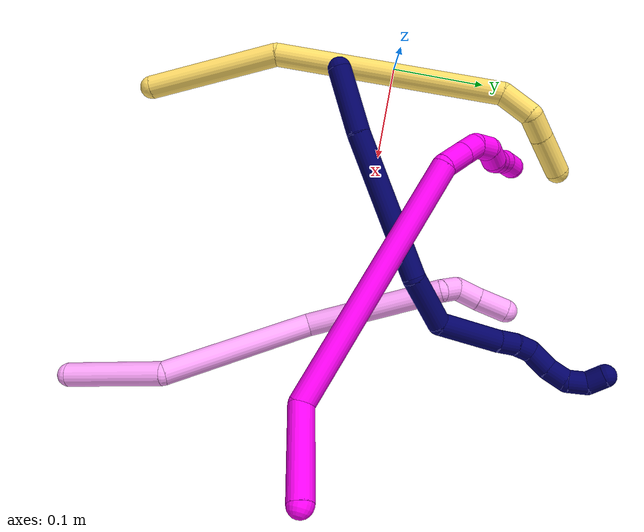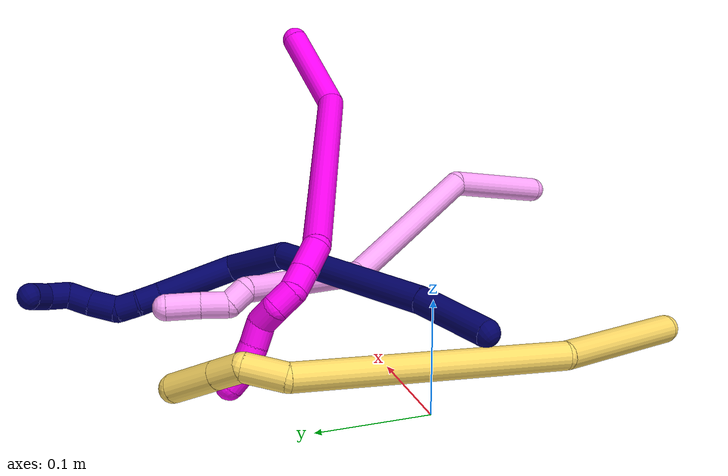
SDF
<sdf version="1.7">
 <world name="default">
  <model name="4">
   <static>0</static>
   <link name="4">
    <collision name="collision-cylinder-e_1_1_4">
     <pose>-0.001423 0.008335 -0.052731 -2.98482 -0.026646 0.336054</pose>
     <geometry><cylinder><radius>0.0125</radius><length>0.106808</length></cylinder></geometry>
     <surface>
      <friction><ode><mu>1.16</mu><mu2>1.16</mu2><slip1>0</slip1><slip2>0</slip2></ode></friction>
      <contact><ode><kp>1e+06</kp><kd>1</kd><max_vel>0</max_vel><min_depth>0.001</min_depth></ode></contact>
     </surface>
    </collision>
    <visual name="visual-cylinder-e_1_1_4">
     <pose>-0.001423 0.008335 -0.052731 -2.98482 -0.026646 0.336054</pose>
     <geometry><cylinder><radius>0.0125</radius><length>0.106808</length></cylinder></geometry>
     <material><ambient>1 0.65098 0.996078 1</ambient></material>
    </visual>
    <collision name="collision-cylinder-e_2_4_5">
     <pose>-0.051087 0.044701 -0.165305 -2.70354 -0.630576 1.94387</pose>
     <geometry><cylinder><radius>0.0125</radius><length>0.163636</length></cylinder></geometry>
     <surface>
      <friction><ode><mu>1.16</mu><mu2>1.16</mu2><slip1>0</slip1><slip2>0</slip2></ode></friction>
      <contact><ode><kp>1e+06</kp><kd>1</kd><max_vel>0</max_vel><min_depth>0.001</min_depth></ode></contact>
     </surface>
    </collision>
    <visual name="visual-cylinder-e_2_4_5">
     <pose>-0.051087 0.044701 -0.165305 -2.70354 -0.630576 1.94387</pose>
     <geometry><cylinder><radius>0.0125</radius><length>0.163636</length></cylinder></geometry>
     <material><ambient>1 0.65098 0.996078 1</ambient></material>
    </visual>
    <collision name="collision-cylinder-e_3_5_6">
     <pose>-0.106267 0.099853 -0.294885 -2.77069 -0.092484 0.483662</pose>
     <geometry><cylinder><radius>0.0125</radius><length>0.150291</length></cylinder></geometry>
     <surface>
      <friction><ode><mu>1.16</mu><mu2>1.16</mu2><slip1>0</slip1><slip2>0</slip2></ode></friction>
      <contact><ode><kp>1e+06</kp><kd>1</kd><max_vel>0</max_vel><min_depth>0.001</min_depth></ode></contact>
     </surface>
    </collision>
    <visual name="visual-cylinder-e_3_5_6">
     <pose>-0.106267 0.099853 -0.294885 -2.77069 -0.092484 0.483662</pose>
     <geometry><cylinder><radius>0.0125</radius><length>0.150291</length></cylinder></geometry>
     <material><ambient>1 0.65098 0.996078 1</ambient></material>
    </visual>
    <collision name="collision-cylinder-e_4_6_7">
     <pose>-0.120642 0.128691 -0.371654 -2.90221 -0.798731 2.58638</pose>
     <geometry><cylinder><radius>0.0125</radius><length>0.020754</length></cylinder></geometry>
     <surface>
      <friction><ode><mu>1.16</mu><mu2>1.16</mu2><slip1>0</slip1><slip2>0</slip2></ode></friction>
      <contact><ode><kp>1e+06</kp><kd>1</kd><max_vel>0</max_vel><min_depth>0.001</min_depth></ode></contact>
     </surface>
    </collision>
    <visual name="visual-cylinder-e_4_6_7">
     <pose>-0.120642 0.128691 -0.371654 -2.90221 -0.798731 2.58638</pose>
     <geometry><cylinder><radius>0.0125</radius><length>0.020754</length></cylinder></geometry>
     <material><ambient>1 0.65098 0.996078 1</ambient></material>
    </visual>
    <collision name="collision-cylinder-e_5_7_8">
     <pose>-0.131044 0.125826 -0.390494 2.77147 -0.230172 -1.10636</pose>
     <geometry><cylinder><radius>0.0125</radius><length>0.026015</length></cylinder></geometry>
     <surface>
      <friction><ode><mu>1.16</mu><mu2>1.16</mu2><slip1>0</slip1><slip2>0</slip2></ode></friction>
      <contact><ode><kp>1e+06</kp><kd>1</kd><max_vel>0</max_vel><min_depth>0.001</min_depth></ode></contact>
     </surface>
    </collision>
    <visual name="visual-cylinder-e_5_7_8">
     <pose>-0.131044 0.125826 -0.390494 2.77147 -0.230172 -1.10636</pose>
     <geometry><cylinder><radius>0.0125</radius><length>0.026015</length></cylinder></geometry>
     <material><ambient>1 0.65098 0.996078 1</ambient></material>
    </visual>
    <collision name="collision-cylinder-e_6_8_2">
     <pose>-0.138209 0.116524 -0.41727 2.83609 -0.261322 -1.41313</pose>
     <geometry><cylinder><radius>0.0125</radius><length>0.032495</length></cylinder></geometry>
     <surface>
      <friction><ode><mu>1.16</mu><mu2>1.16</mu2><slip1>0</slip1><slip2>0</slip2></ode></friction>
      <contact><ode><kp>1e+06</kp><kd>1</kd><max_vel>0</max_vel><min_depth>0.001</min_depth></ode></contact>
     </surface>
    </collision>
    <visual name="visual-cylinder-e_6_8_2">
     <pose>-0.138209 0.116524 -0.41727 2.83609 -0.261322 -1.41313</pose>
     <geometry><cylinder><radius>0.0125</radius><length>0.032495</length></cylinder></geometry>
     <material><ambient>1 0.65098 0.996078 1</ambient></material>
    </visual>
    <collision name="collision-sphere-2">
     <pose>-0.142407 0.111803 -0.432239 0 -0 0</pose>
     <geometry><sphere><radius>0.0125</radius></sphere></geometry>
     <surface>
      <friction><ode><mu>1.16</mu><mu2>1.16</mu2><slip1>0</slip1><slip2>0</slip2></ode></friction>
      <contact><ode><kp>1e+06</kp><kd>1</kd><max_vel>0</max_vel><min_depth>0.001</min_depth></ode></contact>
     </surface>
    </collision>
    <visual name="visual-sphere-2">
     <pose>-0.142407 0.111803 -0.432239 0 -0 0</pose>
     <geometry><sphere><radius>0.0125</radius></sphere></geometry>
     <material><ambient>1 0.65098 0.996078 1</ambient></material>
    </visual>
    <collision name="collision-sphere-4">
     <pose>-0.002846 0.01667 -0.105461 0 -0 0</pose>
     <geometry><sphere><radius>0.0125</radius></sphere></geometry>
     <surface>
      <friction><ode><mu>1.16</mu><mu2>1.16</mu2><slip1>0</slip1><slip2>0</slip2></ode></friction>
      <contact><ode><kp>1e+06</kp><kd>1</kd><max_vel>0</max_vel><min_depth>0.001</min_depth></ode></contact>
     </surface>
    </collision>
    <visual name="visual-sphere-4">
     <pose>-0.002846 0.01667 -0.105461 0 -0 0</pose>
     <geometry><sphere><radius>0.0125</radius></sphere></geometry>
     <material><ambient>1 0.65098 0.996078 1</ambient></material>
    </visual>
    <collision name="collision-sphere-1">
     <geometry><sphere><radius>0.0125</radius></sphere></geometry>
     <surface>
      <friction><ode><mu>1.16</mu><mu2>1.16</mu2><slip1>0</slip1><slip2>0</slip2></ode></friction>
      <contact><ode><kp>1e+06</kp><kd>1</kd><max_vel>0</max_vel><min_depth>0.001</min_depth></ode></contact>
     </surface>
    </collision>
    <visual name="visual-sphere-1">
     <geometry><sphere><radius>0.0125</radius></sphere></geometry>
     <material><ambient>1 0.65098 0.996078 1</ambient></material>
    </visual>
    <collision name="collision-sphere-8">
     <pose>-0.134012 0.121245 -0.402301 0 -0 0</pose>
     <geometry><sphere><radius>0.0125</radius></sphere></geometry>
     <surface>
      <friction><ode><mu>1.16</mu><mu2>1.16</mu2><slip1>0</slip1><slip2>0</slip2></ode></friction>
      <contact><ode><kp>1e+06</kp><kd>1</kd><max_vel>0</max_vel><min_depth>0.001</min_depth></ode></contact>
     </surface>
    </collision>
    <visual name="visual-sphere-8">
     <pose>-0.134012 0.121245 -0.402301 0 -0 0</pose>
     <geometry><sphere><radius>0.0125</radius></sphere></geometry>
     <material><ambient>1 0.65098 0.996078 1</ambient></material>
    </visual>
    <collision name="collision-sphere-5">
     <pose>-0.099327 0.072733 -0.225149 0 -0 0</pose>
     <geometry><sphere><radius>0.0125</radius></sphere></geometry>
     <surface>
      <friction><ode><mu>1.16</mu><mu2>1.16</mu2><slip1>0</slip1><slip2>0</slip2></ode></friction>
      <contact><ode><kp>1e+06</kp><kd>1</kd><max_vel>0</max_vel><min_depth>0.001</min_depth></ode></contact>
     </surface>
    </collision>
    <visual name="visual-sphere-5">
     <pose>-0.099327 0.072733 -0.225149 0 -0 0</pose>
     <geometry><sphere><radius>0.0125</radius></sphere></geometry>
     <material><ambient>1 0.65098 0.996078 1</ambient></material>
    </visual>
    <collision name="collision-sphere-6">
     <pose>-0.113207 0.126974 -0.364622 0 -0 0</pose>
     <geometry><sphere><radius>0.0125</radius></sphere></geometry>
     <surface>
      <friction><ode><mu>1.16</mu><mu2>1.16</mu2><slip1>0</slip1><slip2>0</slip2></ode></friction>
      <contact><ode><kp>1e+06</kp><kd>1</kd><max_vel>0</max_vel><min_depth>0.001</min_depth></ode></contact>
     </surface>
    </collision>
    <visual name="visual-sphere-6">
     <pose>-0.113207 0.126974 -0.364622 0 -0 0</pose>
     <geometry><sphere><radius>0.0125</radius></sphere></geometry>
     <material><ambient>1 0.65098 0.996078 1</ambient></material>
    </visual>
    <collision name="collision-sphere-7">
     <pose>-0.128076 0.130407 -0.378687 0 -0 0</pose>
     <geometry><sphere><radius>0.0125</radius></sphere></geometry>
     <surface>
      <friction><ode><mu>1.16</mu><mu2>1.16</mu2><slip1>0</slip1><slip2>0</slip2></ode></friction>
      <contact><ode><kp>1e+06</kp><kd>1</kd><max_vel>0</max_vel><min_depth>0.001</min_depth></ode></contact>
     </surface>
    </collision>
    <visual name="visual-sphere-7">
     <pose>-0.128076 0.130407 -0.378687 0 -0 0</pose>
     <geometry><sphere><radius>0.0125</radius></sphere></geometry>
     <material><ambient>1 0.65098 0.996078 1</ambient></material>
    </visual>
    <inertial>
     <pose>-0.069773 0.065886 -0.216864 0 -0 0</pose>
     <mass>0.5</mass>
     <inertia>
      <ixx>0.000677</ixx>
      <ixy>0</ixy>
      <ixz>0</ixz>
      <iyy>0.000328</iyy>
      <iyz>0</iyz>
      <izz>-2.9e-05</izz>
     </inertia>
    </inertial>
   </link>
   <pose>0.387897 -0.2795 0.047532 3.03464 -1.30917 -1.39101</pose>
  </model>
  <model name="5">
   <static>0</static>
   <link name="5">
    <collision name="collision-cylinder-e_1_1_4">
     <pose>-0.036842 0.055721 -0.025047 -1.99324 -0.54267 0.812296</pose>
     <geometry><cylinder><radius>0.0125</radius><length>0.142681</length></cylinder></geometry>
     <surface>
      <friction><ode><mu>1.16</mu><mu2>1.16</mu2><slip1>0</slip1><slip2>0</slip2></ode></friction>
      <contact><ode><kp>1e+06</kp><kd>1</kd><max_vel>0</max_vel><min_depth>0.001</min_depth></ode></contact>
     </surface>
    </collision>
    <visual name="visual-cylinder-e_1_1_4">
     <pose>-0.036842 0.055721 -0.025047 -1.99324 -0.54267 0.812296</pose>
     <geometry><cylinder><radius>0.0125</radius><length>0.142681</length></cylinder></geometry>
     <material><ambient>1 0.858824 0.4 1</ambient></material>
    </visual>
    <collision name="collision-cylinder-e_2_4_5">
     <pose>-0.089916 0.225487 -0.092026 -1.92313 -0.132799 0.190024</pose>
     <geometry><cylinder><radius>0.0125</radius><length>0.24518</length></cylinder></geometry>
     <surface>
      <friction><ode><mu>1.16</mu><mu2>1.16</mu2><slip1>0</slip1><slip2>0</slip2></ode></friction>
      <contact><ode><kp>1e+06</kp><kd>1</kd><max_vel>0</max_vel><min_depth>0.001</min_depth></ode></contact>
     </surface>
    </collision>
    <visual name="visual-cylinder-e_2_4_5">
     <pose>-0.089916 0.225487 -0.092026 -1.92313 -0.132799 0.190024</pose>
     <geometry><cylinder><radius>0.0125</radius><length>0.24518</length></cylinder></geometry>
     <material><ambient>1 0.858824 0.4 1</ambient></material>
    </visual>
    <collision name="collision-cylinder-e_3_5_6">
     <pose>-0.100296 0.357277 -0.135761 -1.67203 0.317019 -0.3502</pose>
     <geometry><cylinder><radius>0.0125</radius><length>0.037541</length></cylinder></geometry>
     <surface>
      <friction><ode><mu>1.16</mu><mu2>1.16</mu2><slip1>0</slip1><slip2>0</slip2></ode></friction>
      <contact><ode><kp>1e+06</kp><kd>1</kd><max_vel>0</max_vel><min_depth>0.001</min_depth></ode></contact>
     </surface>
    </collision>
    <visual name="visual-cylinder-e_3_5_6">
     <pose>-0.100296 0.357277 -0.135761 -1.67203 0.317019 -0.3502</pose>
     <geometry><cylinder><radius>0.0125</radius><length>0.037541</length></cylinder></geometry>
     <material><ambient>1 0.858824 0.4 1</ambient></material>
    </visual>
    <collision name="collision-cylinder-e_4_6_7">
     <pose>-0.084944 0.38258 -0.144538 -2.31606 0.74578 -1.45818</pose>
     <geometry><cylinder><radius>0.0125</radius><length>0.028004</length></cylinder></geometry>
     <surface>
      <friction><ode><mu>1.16</mu><mu2>1.16</mu2><slip1>0</slip1><slip2>0</slip2></ode></friction>
      <contact><ode><kp>1e+06</kp><kd>1</kd><max_vel>0</max_vel><min_depth>0.001</min_depth></ode></contact>
     </surface>
    </collision>
    <visual name="visual-cylinder-e_4_6_7">
     <pose>-0.084944 0.38258 -0.144538 -2.31606 0.74578 -1.45818</pose>
     <geometry><cylinder><radius>0.0125</radius><length>0.028004</length></cylinder></geometry>
     <material><ambient>1 0.858824 0.4 1</ambient></material>
    </visual>
    <collision name="collision-cylinder-e_5_7_2">
     <pose>-0.059698 0.402694 -0.163227 -2.32156 0.742114 -1.46026</pose>
     <geometry><cylinder><radius>0.0125</radius><length>0.046594</length></cylinder></geometry>
     <surface>
      <friction><ode><mu>1.16</mu><mu2>1.16</mu2><slip1>0</slip1><slip2>0</slip2></ode></friction>
      <contact><ode><kp>1e+06</kp><kd>1</kd><max_vel>0</max_vel><min_depth>0.001</min_depth></ode></contact>
     </surface>
    </collision>
    <visual name="visual-cylinder-e_5_7_2">
     <pose>-0.059698 0.402694 -0.163227 -2.32156 0.742114 -1.46026</pose>
     <geometry><cylinder><radius>0.0125</radius><length>0.046594</length></cylinder></geometry>
     <material><ambient>1 0.858824 0.4 1</ambient></material>
    </visual>
    <collision name="collision-sphere-2">
     <pose>-0.043952 0.415248 -0.174941 0 -0 0</pose>
     <geometry><sphere><radius>0.0125</radius></sphere></geometry>
     <surface>
      <friction><ode><mu>1.16</mu><mu2>1.16</mu2><slip1>0</slip1><slip2>0</slip2></ode></friction>
      <contact><ode><kp>1e+06</kp><kd>1</kd><max_vel>0</max_vel><min_depth>0.001</min_depth></ode></contact>
     </surface>
    </collision>
    <visual name="visual-sphere-2">
     <pose>-0.043952 0.415248 -0.174941 0 -0 0</pose>
     <geometry><sphere><radius>0.0125</radius></sphere></geometry>
     <material><ambient>1 0.858824 0.4 1</ambient></material>
    </visual>
    <collision name="collision-sphere-7">
     <pose>-0.075443 0.390139 -0.151514 0 -0 0</pose>
     <geometry><sphere><radius>0.0125</radius></sphere></geometry>
     <surface>
      <friction><ode><mu>1.16</mu><mu2>1.16</mu2><slip1>0</slip1><slip2>0</slip2></ode></friction>
      <contact><ode><kp>1e+06</kp><kd>1</kd><max_vel>0</max_vel><min_depth>0.001</min_depth></ode></contact>
     </surface>
    </collision>
    <visual name="visual-sphere-7">
     <pose>-0.075443 0.390139 -0.151514 0 -0 0</pose>
     <geometry><sphere><radius>0.0125</radius></sphere></geometry>
     <material><ambient>1 0.858824 0.4 1</ambient></material>
    </visual>
    <collision name="collision-sphere-6">
     <pose>-0.094445 0.375021 -0.137563 0 -0 0</pose>
     <geometry><sphere><radius>0.0125</radius></sphere></geometry>
     <surface>
      <friction><ode><mu>1.16</mu><mu2>1.16</mu2><slip1>0</slip1><slip2>0</slip2></ode></friction>
      <contact><ode><kp>1e+06</kp><kd>1</kd><max_vel>0</max_vel><min_depth>0.001</min_depth></ode></contact>
     </surface>
    </collision>
    <visual name="visual-sphere-6">
     <pose>-0.094445 0.375021 -0.137563 0 -0 0</pose>
     <geometry><sphere><radius>0.0125</radius></sphere></geometry>
     <material><ambient>1 0.858824 0.4 1</ambient></material>
    </visual>
    <collision name="collision-sphere-5">
     <pose>-0.106148 0.339533 -0.133958 0 -0 0</pose>
     <geometry><sphere><radius>0.0125</radius></sphere></geometry>
     <surface>
      <friction><ode><mu>1.16</mu><mu2>1.16</mu2><slip1>0</slip1><slip2>0</slip2></ode></friction>
      <contact><ode><kp>1e+06</kp><kd>1</kd><max_vel>0</max_vel><min_depth>0.001</min_depth></ode></contact>
     </surface>
    </collision>
    <visual name="visual-sphere-5">
     <pose>-0.106148 0.339533 -0.133958 0 -0 0</pose>
     <geometry><sphere><radius>0.0125</radius></sphere></geometry>
     <material><ambient>1 0.858824 0.4 1</ambient></material>
    </visual>
    <collision name="collision-sphere-1">
     <geometry><sphere><radius>0.0125</radius></sphere></geometry>
     <surface>
      <friction><ode><mu>1.16</mu><mu2>1.16</mu2><slip1>0</slip1><slip2>0</slip2></ode></friction>
      <contact><ode><kp>1e+06</kp><kd>1</kd><max_vel>0</max_vel><min_depth>0.001</min_depth></ode></contact>
     </surface>
    </collision>
    <visual name="visual-sphere-1">
     <geometry><sphere><radius>0.0125</radius></sphere></geometry>
     <material><ambient>1 0.858824 0.4 1</ambient></material>
    </visual>
    <collision name="collision-sphere-4">
     <pose>-0.073684 0.111441 -0.050093 0 -0 0</pose>
     <geometry><sphere><radius>0.0125</radius></sphere></geometry>
     <surface>
      <friction><ode><mu>1.16</mu><mu2>1.16</mu2><slip1>0</slip1><slip2>0</slip2></ode></friction>
      <contact><ode><kp>1e+06</kp><kd>1</kd><max_vel>0</max_vel><min_depth>0.001</min_depth></ode></contact>
     </surface>
    </collision>
    <visual name="visual-sphere-4">
     <pose>-0.073684 0.111441 -0.050093 0 -0 0</pose>
     <geometry><sphere><radius>0.0125</radius></sphere></geometry>
     <material><ambient>1 0.858824 0.4 1</ambient></material>
    </visual>
    <inertial>
     <pose>-0.072456 0.212249 -0.085772 0 -0 0</pose>
     <mass>0.5</mass>
     <inertia>
      <ixx>0.001728</ixx>
      <ixy>0</ixy>
      <ixz>0</ixz>
      <iyy>3.7e-05</iyy>
      <iyz>0</iyz>
      <izz>-0.00109</izz>
     </inertia>
    </inertial>
   </link>
   <pose>0.069591 -0.258113 0.011493 0.385021 0.284384 -0.124448</pose>
  </model>
  <model name="7">
   <static>0</static>
   <link name="7">
    <collision name="collision-cylinder-e_1_1_4">
     <pose>0.016104 0.006634 0.031608 -0.206884 0.462553 -0.048884</pose>
     <geometry><cylinder><radius>0.0125</radius><length>0.072177</length></cylinder></geometry>
     <surface>
      <friction><ode><mu>1.16</mu><mu2>1.16</mu2><slip1>0</slip1><slip2>0</slip2></ode></friction>
      <contact><ode><kp>1e+06</kp><kd>1</kd><max_vel>0</max_vel><min_depth>0.001</min_depth></ode></contact>
     </surface>
    </collision>
    <visual name="visual-cylinder-e_1_1_4">
     <pose>0.016104 0.006634 0.031608 -0.206884 0.462553 -0.048884</pose>
     <geometry><cylinder><radius>0.0125</radius><length>0.072177</length></cylinder></geometry>
     <material><ambient>0.003922 0 0.403922 1</ambient></material>
    </visual>
    <collision name="collision-cylinder-e_2_4_5">
     <pose>0.072212 0.035843 0.128377 -0.333509 0.525658 -0.090511</pose>
     <geometry><cylinder><radius>0.0125</radius><length>0.159449</length></cylinder></geometry>
     <surface>
      <friction><ode><mu>1.16</mu><mu2>1.16</mu2><slip1>0</slip1><slip2>0</slip2></ode></friction>
      <contact><ode><kp>1e+06</kp><kd>1</kd><max_vel>0</max_vel><min_depth>0.001</min_depth></ode></contact>
     </surface>
    </collision>
    <visual name="visual-cylinder-e_2_4_5">
     <pose>0.072212 0.035843 0.128377 -0.333509 0.525658 -0.090511</pose>
     <geometry><cylinder><radius>0.0125</radius><length>0.159449</length></cylinder></geometry>
     <material><ambient>0.003922 0 0.403922 1</ambient></material>
    </visual>
    <collision name="collision-cylinder-e_3_5_6">
     <pose>0.134265 0.07318 0.208797 -0.768801 0.804282 -0.340768</pose>
     <geometry><cylinder><radius>0.0125</radius><length>0.061217</length></cylinder></geometry>
     <surface>
      <friction><ode><mu>1.16</mu><mu2>1.16</mu2><slip1>0</slip1><slip2>0</slip2></ode></friction>
      <contact><ode><kp>1e+06</kp><kd>1</kd><max_vel>0</max_vel><min_depth>0.001</min_depth></ode></contact>
     </surface>
    </collision>
    <visual name="visual-cylinder-e_3_5_6">
     <pose>0.134265 0.07318 0.208797 -0.768801 0.804282 -0.340768</pose>
     <geometry><cylinder><radius>0.0125</radius><length>0.061217</length></cylinder></geometry>
     <material><ambient>0.003922 0 0.403922 1</ambient></material>
    </visual>
    <collision name="collision-cylinder-e_4_6_7">
     <pose>0.167167 0.121803 0.231707 -1.3486 0.30302 -0.242867</pose>
     <geometry><cylinder><radius>0.0125</radius><length>0.072745</length></cylinder></geometry>
     <surface>
      <friction><ode><mu>1.16</mu><mu2>1.16</mu2><slip1>0</slip1><slip2>0</slip2></ode></friction>
      <contact><ode><kp>1e+06</kp><kd>1</kd><max_vel>0</max_vel><min_depth>0.001</min_depth></ode></contact>
     </surface>
    </collision>
    <visual name="visual-cylinder-e_4_6_7">
     <pose>0.167167 0.121803 0.231707 -1.3486 0.30302 -0.242867</pose>
     <geometry><cylinder><radius>0.0125</radius><length>0.072745</length></cylinder></geometry>
     <material><ambient>0.003922 0 0.403922 1</ambient></material>
    </visual>
    <collision name="collision-cylinder-e_5_7_8">
     <pose>0.180284 0.166242 0.241323 -1.3871 0.207387 -0.172596</pose>
     <geometry><cylinder><radius>0.0125</radius><length>0.021987</length></cylinder></geometry>
     <surface>
      <friction><ode><mu>1.16</mu><mu2>1.16</mu2><slip1>0</slip1><slip2>0</slip2></ode></friction>
      <contact><ode><kp>1e+06</kp><kd>1</kd><max_vel>0</max_vel><min_depth>0.001</min_depth></ode></contact>
     </surface>
    </collision>
    <visual name="visual-cylinder-e_5_7_8">
     <pose>0.180284 0.166242 0.241323 -1.3871 0.207387 -0.172596</pose>
     <geometry><cylinder><radius>0.0125</radius><length>0.021987</length></cylinder></geometry>
     <material><ambient>0.003922 0 0.403922 1</ambient></material>
    </visual>
    <collision name="collision-cylinder-e_6_8_9">
     <pose>0.186079 0.185716 0.246283 -1.24608 0.359755 -0.259839</pose>
     <geometry><cylinder><radius>0.0125</radius><length>0.02006</length></cylinder></geometry>
     <surface>
      <friction><ode><mu>1.16</mu><mu2>1.16</mu2><slip1>0</slip1><slip2>0</slip2></ode></friction>
      <contact><ode><kp>1e+06</kp><kd>1</kd><max_vel>0</max_vel><min_depth>0.001</min_depth></ode></contact>
     </surface>
    </collision>
    <visual name="visual-cylinder-e_6_8_9">
     <pose>0.186079 0.185716 0.246283 -1.24608 0.359755 -0.259839</pose>
     <geometry><cylinder><radius>0.0125</radius><length>0.02006</length></cylinder></geometry>
     <material><ambient>0.003922 0 0.403922 1</ambient></material>
    </visual>
    <collision name="collision-cylinder-e_7_9_10">
     <pose>0.192867 0.202759 0.259601 -0.668026 0.242837 -0.084634</pose>
     <geometry><cylinder><radius>0.0125</radius><length>0.027093</length></cylinder></geometry>
     <surface>
      <friction><ode><mu>1.16</mu><mu2>1.16</mu2><slip1>0</slip1><slip2>0</slip2></ode></friction>
      <contact><ode><kp>1e+06</kp><kd>1</kd><max_vel>0</max_vel><min_depth>0.001</min_depth></ode></contact>
     </surface>
    </collision>
    <visual name="visual-cylinder-e_7_9_10">
     <pose>0.192867 0.202759 0.259601 -0.668026 0.242837 -0.084634</pose>
     <geometry><cylinder><radius>0.0125</radius><length>0.027093</length></cylinder></geometry>
     <material><ambient>0.003922 0 0.403922 1</ambient></material>
    </visual>
    <collision name="collision-cylinder-e_8_10_11">
     <pose>0.195656 0.21846 0.278324 -0.732509 -0.041448 0.0159</pose>
     <geometry><cylinder><radius>0.0125</radius><length>0.022616</length></cylinder></geometry>
     <surface>
      <friction><ode><mu>1.16</mu><mu2>1.16</mu2><slip1>0</slip1><slip2>0</slip2></ode></friction>
      <contact><ode><kp>1e+06</kp><kd>1</kd><max_vel>0</max_vel><min_depth>0.001</min_depth></ode></contact>
     </surface>
    </collision>
    <visual name="visual-cylinder-e_8_10_11">
     <pose>0.195656 0.21846 0.278324 -0.732509 -0.041448 0.0159</pose>
     <geometry><cylinder><radius>0.0125</radius><length>0.022616</length></cylinder></geometry>
     <material><ambient>0.003922 0 0.403922 1</ambient></material>
    </visual>
    <collision name="collision-cylinder-e_9_11_12">
     <pose>0.193657 0.236261 0.28995 -1.26574 -0.141506 0.103877</pose>
     <geometry><cylinder><radius>0.0125</radius><length>0.021699</length></cylinder></geometry>
     <surface>
      <friction><ode><mu>1.16</mu><mu2>1.16</mu2><slip1>0</slip1><slip2>0</slip2></ode></friction>
      <contact><ode><kp>1e+06</kp><kd>1</kd><max_vel>0</max_vel><min_depth>0.001</min_depth></ode></contact>
     </surface>
    </collision>
    <visual name="visual-cylinder-e_9_11_12">
     <pose>0.193657 0.236261 0.28995 -1.26574 -0.141506 0.103877</pose>
     <geometry><cylinder><radius>0.0125</radius><length>0.021699</length></cylinder></geometry>
     <material><ambient>0.003922 0 0.403922 1</ambient></material>
    </visual>
    <collision name="collision-cylinder-e_10_12_2">
     <pose>0.185488 0.254611 0.293044 -1.5871 -0.686245 0.696639</pose>
     <geometry><cylinder><radius>0.0125</radius><length>0.020956</length></cylinder></geometry>
     <surface>
      <friction><ode><mu>1.16</mu><mu2>1.16</mu2><slip1>0</slip1><slip2>0</slip2></ode></friction>
      <contact><ode><kp>1e+06</kp><kd>1</kd><max_vel>0</max_vel><min_depth>0.001</min_depth></ode></contact>
     </surface>
    </collision>
    <visual name="visual-cylinder-e_10_12_2">
     <pose>0.185488 0.254611 0.293044 -1.5871 -0.686245 0.696639</pose>
     <geometry><cylinder><radius>0.0125</radius><length>0.020956</length></cylinder></geometry>
     <material><ambient>0.003922 0 0.403922 1</ambient></material>
    </visual>
    <collision name="collision-sphere-2">
     <pose>0.178849 0.262716 0.292912 0 -0 0</pose>
     <geometry><sphere><radius>0.0125</radius></sphere></geometry>
     <surface>
      <friction><ode><mu>1.16</mu><mu2>1.16</mu2><slip1>0</slip1><slip2>0</slip2></ode></friction>
      <contact><ode><kp>1e+06</kp><kd>1</kd><max_vel>0</max_vel><min_depth>0.001</min_depth></ode></contact>
     </surface>
    </collision>
    <visual name="visual-sphere-2">
     <pose>0.178849 0.262716 0.292912 0 -0 0</pose>
     <geometry><sphere><radius>0.0125</radius></sphere></geometry>
     <material><ambient>0.003922 0 0.403922 1</ambient></material>
    </visual>
    <collision name="collision-sphere-12">
     <pose>0.192127 0.246506 0.293177 0 -0 0</pose>
     <geometry><sphere><radius>0.0125</radius></sphere></geometry>
     <surface>
      <friction><ode><mu>1.16</mu><mu2>1.16</mu2><slip1>0</slip1><slip2>0</slip2></ode></friction>
      <contact><ode><kp>1e+06</kp><kd>1</kd><max_vel>0</max_vel><min_depth>0.001</min_depth></ode></contact>
     </surface>
    </collision>
    <visual name="visual-sphere-12">
     <pose>0.192127 0.246506 0.293177 0 -0 0</pose>
     <geometry><sphere><radius>0.0125</radius></sphere></geometry>
     <material><ambient>0.003922 0 0.403922 1</ambient></material>
    </visual>
    <collision name="collision-sphere-11">
     <pose>0.195187 0.226015 0.286724 0 -0 0</pose>
     <geometry><sphere><radius>0.0125</radius></sphere></geometry>
     <surface>
      <friction><ode><mu>1.16</mu><mu2>1.16</mu2><slip1>0</slip1><slip2>0</slip2></ode></friction>
      <contact><ode><kp>1e+06</kp><kd>1</kd><max_vel>0</max_vel><min_depth>0.001</min_depth></ode></contact>
     </surface>
    </collision>
    <visual name="visual-sphere-11">
     <pose>0.195187 0.226015 0.286724 0 -0 0</pose>
     <geometry><sphere><radius>0.0125</radius></sphere></geometry>
     <material><ambient>0.003922 0 0.403922 1</ambient></material>
    </visual>
    <collision name="collision-sphere-10">
     <pose>0.196125 0.210904 0.269923 0 -0 0</pose>
     <geometry><sphere><radius>0.0125</radius></sphere></geometry>
     <surface>
      <friction><ode><mu>1.16</mu><mu2>1.16</mu2><slip1>0</slip1><slip2>0</slip2></ode></friction>
      <contact><ode><kp>1e+06</kp><kd>1</kd><max_vel>0</max_vel><min_depth>0.001</min_depth></ode></contact>
     </surface>
    </collision>
    <visual name="visual-sphere-10">
     <pose>0.196125 0.210904 0.269923 0 -0 0</pose>
     <geometry><sphere><radius>0.0125</radius></sphere></geometry>
     <material><ambient>0.003922 0 0.403922 1</ambient></material>
    </visual>
    <collision name="collision-sphere-9">
     <pose>0.18961 0.194614 0.249278 0 -0 0</pose>
     <geometry><sphere><radius>0.0125</radius></sphere></geometry>
     <surface>
      <friction><ode><mu>1.16</mu><mu2>1.16</mu2><slip1>0</slip1><slip2>0</slip2></ode></friction>
      <contact><ode><kp>1e+06</kp><kd>1</kd><max_vel>0</max_vel><min_depth>0.001</min_depth></ode></contact>
     </surface>
    </collision>
    <visual name="visual-sphere-9">
     <pose>0.18961 0.194614 0.249278 0 -0 0</pose>
     <geometry><sphere><radius>0.0125</radius></sphere></geometry>
     <material><ambient>0.003922 0 0.403922 1</ambient></material>
    </visual>
    <collision name="collision-sphere-4">
     <pose>0.032208 0.013268 0.063215 0 -0 0</pose>
     <geometry><sphere><radius>0.0125</radius></sphere></geometry>
     <surface>
      <friction><ode><mu>1.16</mu><mu2>1.16</mu2><slip1>0</slip1><slip2>0</slip2></ode></friction>
      <contact><ode><kp>1e+06</kp><kd>1</kd><max_vel>0</max_vel><min_depth>0.001</min_depth></ode></contact>
     </surface>
    </collision>
    <visual name="visual-sphere-4">
     <pose>0.032208 0.013268 0.063215 0 -0 0</pose>
     <geometry><sphere><radius>0.0125</radius></sphere></geometry>
     <material><ambient>0.003922 0 0.403922 1</ambient></material>
    </visual>
    <collision name="collision-sphere-1">
     <geometry><sphere><radius>0.0125</radius></sphere></geometry>
     <surface>
      <friction><ode><mu>1.16</mu><mu2>1.16</mu2><slip1>0</slip1><slip2>0</slip2></ode></friction>
      <contact><ode><kp>1e+06</kp><kd>1</kd><max_vel>0</max_vel><min_depth>0.001</min_depth></ode></contact>
     </surface>
    </collision>
    <visual name="visual-sphere-1">
     <geometry><sphere><radius>0.0125</radius></sphere></geometry>
     <material><ambient>0.003922 0 0.403922 1</ambient></material>
    </visual>
    <collision name="collision-sphere-8">
     <pose>0.182548 0.176819 0.243288 0 -0 0</pose>
     <geometry><sphere><radius>0.0125</radius></sphere></geometry>
     <surface>
      <friction><ode><mu>1.16</mu><mu2>1.16</mu2><slip1>0</slip1><slip2>0</slip2></ode></friction>
      <contact><ode><kp>1e+06</kp><kd>1</kd><max_vel>0</max_vel><min_depth>0.001</min_depth></ode></contact>
     </surface>
    </collision>
    <visual name="visual-sphere-8">
     <pose>0.182548 0.176819 0.243288 0 -0 0</pose>
     <geometry><sphere><radius>0.0125</radius></sphere></geometry>
     <material><ambient>0.003922 0 0.403922 1</ambient></material>
    </visual>
    <collision name="collision-sphere-5">
     <pose>0.112216 0.058418 0.193538 0 -0 0</pose>
     <geometry><sphere><radius>0.0125</radius></sphere></geometry>
     <surface>
      <friction><ode><mu>1.16</mu><mu2>1.16</mu2><slip1>0</slip1><slip2>0</slip2></ode></friction>
      <contact><ode><kp>1e+06</kp><kd>1</kd><max_vel>0</max_vel><min_depth>0.001</min_depth></ode></contact>
     </surface>
    </collision>
    <visual name="visual-sphere-5">
     <pose>0.112216 0.058418 0.193538 0 -0 0</pose>
     <geometry><sphere><radius>0.0125</radius></sphere></geometry>
     <material><ambient>0.003922 0 0.403922 1</ambient></material>
    </visual>
    <collision name="collision-sphere-6">
     <pose>0.156313 0.087941 0.224057 0 -0 0</pose>
     <geometry><sphere><radius>0.0125</radius></sphere></geometry>
     <surface>
      <friction><ode><mu>1.16</mu><mu2>1.16</mu2><slip1>0</slip1><slip2>0</slip2></ode></friction>
      <contact><ode><kp>1e+06</kp><kd>1</kd><max_vel>0</max_vel><min_depth>0.001</min_depth></ode></contact>
     </surface>
    </collision>
    <visual name="visual-sphere-6">
     <pose>0.156313 0.087941 0.224057 0 -0 0</pose>
     <geometry><sphere><radius>0.0125</radius></sphere></geometry>
     <material><ambient>0.003922 0 0.403922 1</ambient></material>
    </visual>
    <collision name="collision-sphere-7">
     <pose>0.17802 0.155665 0.239358 0 -0 0</pose>
     <geometry><sphere><radius>0.0125</radius></sphere></geometry>
     <surface>
      <friction><ode><mu>1.16</mu><mu2>1.16</mu2><slip1>0</slip1><slip2>0</slip2></ode></friction>
      <contact><ode><kp>1e+06</kp><kd>1</kd><max_vel>0</max_vel><min_depth>0.001</min_depth></ode></contact>
     </surface>
    </collision>
    <visual name="visual-sphere-7">
     <pose>0.17802 0.155665 0.239358 0 -0 0</pose>
     <geometry><sphere><radius>0.0125</radius></sphere></geometry>
     <material><ambient>0.003922 0 0.403922 1</ambient></material>
    </visual>
    <inertial>
     <pose>0.116985 0.095623 0.176791 0 -0 0</pose>
     <mass>0.5</mass>
     <inertia>
      <ixx>0.000356</ixx>
      <ixy>0</ixy>
      <ixz>0</ixz>
      <iyy>0.000375</iyy>
      <iyz>0</iyz>
      <izz>-0.000346</izz>
     </inertia>
    </inertial>
   </link>
   <pose>0.02199 -0.057412 0.055186 -0.338422 0.901615 -0.026103</pose>
  </model>
  <model name="10">
   <static>0</static>
   <link name="10">
    <collision name="collision-cylinder-e_1_1_4">
     <pose>0.013137 -0.002173 -0.042058 3.08996 0.302382 2.80581</pose>
     <geometry><cylinder><radius>0.0125</radius><length>0.088231</length></cylinder></geometry>
     <surface>
      <friction><ode><mu>1.16</mu><mu2>1.16</mu2><slip1>0</slip1><slip2>0</slip2></ode></friction>
      <contact><ode><kp>1e+06</kp><kd>1</kd><max_vel>0</max_vel><min_depth>0.001</min_depth></ode></contact>
     </surface>
    </collision>
    <visual name="visual-cylinder-e_1_1_4">
     <pose>0.013137 -0.002173 -0.042058 3.08996 0.302382 2.80581</pose>
     <geometry><cylinder><radius>0.0125</radius><length>0.088231</length></cylinder></geometry>
     <material><ambient>1 0 0.964706 1</ambient></material>
    </visual>
    <collision name="collision-cylinder-e_2_4_5">
     <pose>-0.01728 0.004244 -0.207746 -3.07221 -0.337964 2.74025</pose>
     <geometry><cylinder><radius>0.0125</radius><length>0.26272</length></cylinder></geometry>
     <surface>
      <friction><ode><mu>1.16</mu><mu2>1.16</mu2><slip1>0</slip1><slip2>0</slip2></ode></friction>
      <contact><ode><kp>1e+06</kp><kd>1</kd><max_vel>0</max_vel><min_depth>0.001</min_depth></ode></contact>
     </surface>
    </collision>
    <visual name="visual-cylinder-e_2_4_5">
     <pose>-0.01728 0.004244 -0.207746 -3.07221 -0.337964 2.74025</pose>
     <geometry><cylinder><radius>0.0125</radius><length>0.26272</length></cylinder></geometry>
     <material><ambient>1 0 0.964706 1</ambient></material>
    </visual>
    <collision name="collision-cylinder-e_3_5_6">
     <pose>-0.06404 0.020681 -0.343036 -2.54928 -0.224277 0.707101</pose>
     <geometry><cylinder><radius>0.0125</radius><length>0.028827</length></cylinder></geometry>
     <surface>
      <friction><ode><mu>1.16</mu><mu2>1.16</mu2><slip1>0</slip1><slip2>0</slip2></ode></friction>
      <contact><ode><kp>1e+06</kp><kd>1</kd><max_vel>0</max_vel><min_depth>0.001</min_depth></ode></contact>
     </surface>
    </collision>
    <visual name="visual-cylinder-e_3_5_6">
     <pose>-0.06404 0.020681 -0.343036 -2.54928 -0.224277 0.707101</pose>
     <geometry><cylinder><radius>0.0125</radius><length>0.028827</length></cylinder></geometry>
     <material><ambient>1 0 0.964706 1</ambient></material>
    </visual>
    <collision name="collision-cylinder-e_4_6_7">
     <pose>-0.069609 0.034052 -0.362764 -2.5411 -0.237121 0.734566</pose>
     <geometry><cylinder><radius>0.0125</radius><length>0.020123</length></cylinder></geometry>
     <surface>
      <friction><ode><mu>1.16</mu><mu2>1.16</mu2><slip1>0</slip1><slip2>0</slip2></ode></friction>
      <contact><ode><kp>1e+06</kp><kd>1</kd><max_vel>0</max_vel><min_depth>0.001</min_depth></ode></contact>
     </surface>
    </collision>
    <visual name="visual-cylinder-e_4_6_7">
     <pose>-0.069609 0.034052 -0.362764 -2.5411 -0.237121 0.734566</pose>
     <geometry><cylinder><radius>0.0125</radius><length>0.020123</length></cylinder></geometry>
     <material><ambient>1 0 0.964706 1</ambient></material>
    </visual>
    <collision name="collision-cylinder-e_5_7_8">
     <pose>-0.073467 0.048764 -0.3746 -1.95998 -0.149397 0.222236</pose>
     <geometry><cylinder><radius>0.0125</radius><length>0.020079</length></cylinder></geometry>
     <surface>
      <friction><ode><mu>1.16</mu><mu2>1.16</mu2><slip1>0</slip1><slip2>0</slip2></ode></friction>
      <contact><ode><kp>1e+06</kp><kd>1</kd><max_vel>0</max_vel><min_depth>0.001</min_depth></ode></contact>
     </surface>
    </collision>
    <visual name="visual-cylinder-e_5_7_8">
     <pose>-0.073467 0.048764 -0.3746 -1.95998 -0.149397 0.222236</pose>
     <geometry><cylinder><radius>0.0125</radius><length>0.020079</length></cylinder></geometry>
     <material><ambient>1 0 0.964706 1</ambient></material>
    </visual>
    <collision name="collision-cylinder-e_6_8_9">
     <pose>-0.072267 0.067583 -0.378102 -1.54326 0.272635 -0.265317</pose>
     <geometry><cylinder><radius>0.0125</radius><length>0.020015</length></cylinder></geometry>
     <surface>
      <friction><ode><mu>1.16</mu><mu2>1.16</mu2><slip1>0</slip1><slip2>0</slip2></ode></friction>
      <contact><ode><kp>1e+06</kp><kd>1</kd><max_vel>0</max_vel><min_depth>0.001</min_depth></ode></contact>
     </surface>
    </collision>
    <visual name="visual-cylinder-e_6_8_9">
     <pose>-0.072267 0.067583 -0.378102 -1.54326 0.272635 -0.265317</pose>
     <geometry><cylinder><radius>0.0125</radius><length>0.020015</length></cylinder></geometry>
     <material><ambient>1 0 0.964706 1</ambient></material>
    </visual>
    <collision name="collision-cylinder-e_7_9_10">
     <pose>-0.066367 0.085018 -0.38321 -2.17407 0.326298 -0.607239</pose>
     <geometry><cylinder><radius>0.0125</radius><length>0.02</length></cylinder></geometry>
     <surface>
      <friction><ode><mu>1.16</mu><mu2>1.16</mu2><slip1>0</slip1><slip2>0</slip2></ode></friction>
      <contact><ode><kp>1e+06</kp><kd>1</kd><max_vel>0</max_vel><min_depth>0.001</min_depth></ode></contact>
     </surface>
    </collision>
    <visual name="visual-cylinder-e_7_9_10">
     <pose>-0.066367 0.085018 -0.38321 -2.17407 0.326298 -0.607239</pose>
     <geometry><cylinder><radius>0.0125</radius><length>0.02</length></cylinder></geometry>
     <material><ambient>1 0 0.964706 1</ambient></material>
    </visual>
    <collision name="collision-cylinder-e_8_10_11">
     <pose>-0.061013 0.100766 -0.39426 -2.1909 0.216514 -0.416192</pose>
     <geometry><cylinder><radius>0.0125</radius><length>0.02</length></cylinder></geometry>
     <surface>
      <friction><ode><mu>1.16</mu><mu2>1.16</mu2><slip1>0</slip1><slip2>0</slip2></ode></friction>
      <contact><ode><kp>1e+06</kp><kd>1</kd><max_vel>0</max_vel><min_depth>0.001</min_depth></ode></contact>
     </surface>
    </collision>
    <visual name="visual-cylinder-e_8_10_11">
     <pose>-0.061013 0.100766 -0.39426 -2.1909 0.216514 -0.416192</pose>
     <geometry><cylinder><radius>0.0125</radius><length>0.02</length></cylinder></geometry>
     <material><ambient>1 0 0.964706 1</ambient></material>
    </visual>
    <collision name="collision-cylinder-e_9_11_2">
     <pose>-0.057916 0.118255 -0.402786 -1.86115 0.095008 -0.127471</pose>
     <geometry><cylinder><radius>0.0125</radius><length>0.020005</length></cylinder></geometry>
     <surface>
      <friction><ode><mu>1.16</mu><mu2>1.16</mu2><slip1>0</slip1><slip2>0</slip2></ode></friction>
      <contact><ode><kp>1e+06</kp><kd>1</kd><max_vel>0</max_vel><min_depth>0.001</min_depth></ode></contact>
     </surface>
    </collision>
    <visual name="visual-cylinder-e_9_11_2">
     <pose>-0.057916 0.118255 -0.402786 -1.86115 0.095008 -0.127471</pose>
     <geometry><cylinder><radius>0.0125</radius><length>0.020005</length></cylinder></geometry>
     <material><ambient>1 0 0.964706 1</ambient></material>
    </visual>
    <collision name="collision-sphere-2">
     <pose>-0.056967 0.127796 -0.405637 0 -0 0</pose>
     <geometry><sphere><radius>0.0125</radius></sphere></geometry>
     <surface>
      <friction><ode><mu>1.16</mu><mu2>1.16</mu2><slip1>0</slip1><slip2>0</slip2></ode></friction>
      <contact><ode><kp>1e+06</kp><kd>1</kd><max_vel>0</max_vel><min_depth>0.001</min_depth></ode></contact>
     </surface>
    </collision>
    <visual name="visual-sphere-2">
     <pose>-0.056967 0.127796 -0.405637 0 -0 0</pose>
     <geometry><sphere><radius>0.0125</radius></sphere></geometry>
     <material><ambient>1 0 0.964706 1</ambient></material>
    </visual>
    <collision name="collision-sphere-11">
     <pose>-0.058865 0.108714 -0.399936 0 -0 0</pose>
     <geometry><sphere><radius>0.0125</radius></sphere></geometry>
     <surface>
      <friction><ode><mu>1.16</mu><mu2>1.16</mu2><slip1>0</slip1><slip2>0</slip2></ode></friction>
      <contact><ode><kp>1e+06</kp><kd>1</kd><max_vel>0</max_vel><min_depth>0.001</min_depth></ode></contact>
     </surface>
    </collision>
    <visual name="visual-sphere-11">
     <pose>-0.058865 0.108714 -0.399936 0 -0 0</pose>
     <geometry><sphere><radius>0.0125</radius></sphere></geometry>
     <material><ambient>1 0 0.964706 1</ambient></material>
    </visual>
    <collision name="collision-sphere-10">
     <pose>-0.063161 0.092818 -0.388584 0 -0 0</pose>
     <geometry><sphere><radius>0.0125</radius></sphere></geometry>
     <surface>
      <friction><ode><mu>1.16</mu><mu2>1.16</mu2><slip1>0</slip1><slip2>0</slip2></ode></friction>
      <contact><ode><kp>1e+06</kp><kd>1</kd><max_vel>0</max_vel><min_depth>0.001</min_depth></ode></contact>
     </surface>
    </collision>
    <visual name="visual-sphere-10">
     <pose>-0.063161 0.092818 -0.388584 0 -0 0</pose>
     <geometry><sphere><radius>0.0125</radius></sphere></geometry>
     <material><ambient>1 0 0.964706 1</ambient></material>
    </visual>
    <collision name="collision-sphere-9">
     <pose>-0.069572 0.077217 -0.377836 0 -0 0</pose>
     <geometry><sphere><radius>0.0125</radius></sphere></geometry>
     <surface>
      <friction><ode><mu>1.16</mu><mu2>1.16</mu2><slip1>0</slip1><slip2>0</slip2></ode></friction>
      <contact><ode><kp>1e+06</kp><kd>1</kd><max_vel>0</max_vel><min_depth>0.001</min_depth></ode></contact>
     </surface>
    </collision>
    <visual name="visual-sphere-9">
     <pose>-0.069572 0.077217 -0.377836 0 -0 0</pose>
     <geometry><sphere><radius>0.0125</radius></sphere></geometry>
     <material><ambient>1 0 0.964706 1</ambient></material>
    </visual>
    <collision name="collision-sphere-4">
     <pose>0.026275 -0.004347 -0.084115 0 -0 0</pose>
     <geometry><sphere><radius>0.0125</radius></sphere></geometry>
     <surface>
      <friction><ode><mu>1.16</mu><mu2>1.16</mu2><slip1>0</slip1><slip2>0</slip2></ode></friction>
      <contact><ode><kp>1e+06</kp><kd>1</kd><max_vel>0</max_vel><min_depth>0.001</min_depth></ode></contact>
     </surface>
    </collision>
    <visual name="visual-sphere-4">
     <pose>0.026275 -0.004347 -0.084115 0 -0 0</pose>
     <geometry><sphere><radius>0.0125</radius></sphere></geometry>
     <material><ambient>1 0 0.964706 1</ambient></material>
    </visual>
    <collision name="collision-sphere-1">
     <geometry><sphere><radius>0.0125</radius></sphere></geometry>
     <surface>
      <friction><ode><mu>1.16</mu><mu2>1.16</mu2><slip1>0</slip1><slip2>0</slip2></ode></friction>
      <contact><ode><kp>1e+06</kp><kd>1</kd><max_vel>0</max_vel><min_depth>0.001</min_depth></ode></contact>
     </surface>
    </collision>
    <visual name="visual-sphere-1">
     <geometry><sphere><radius>0.0125</radius></sphere></geometry>
     <material><ambient>1 0 0.964706 1</ambient></material>
    </visual>
    <collision name="collision-sphere-8">
     <pose>-0.074962 0.057949 -0.378367 0 -0 0</pose>
     <geometry><sphere><radius>0.0125</radius></sphere></geometry>
     <surface>
      <friction><ode><mu>1.16</mu><mu2>1.16</mu2><slip1>0</slip1><slip2>0</slip2></ode></friction>
      <contact><ode><kp>1e+06</kp><kd>1</kd><max_vel>0</max_vel><min_depth>0.001</min_depth></ode></contact>
     </surface>
    </collision>
    <visual name="visual-sphere-8">
     <pose>-0.074962 0.057949 -0.378367 0 -0 0</pose>
     <geometry><sphere><radius>0.0125</radius></sphere></geometry>
     <material><ambient>1 0 0.964706 1</ambient></material>
    </visual>
    <collision name="collision-sphere-5">
     <pose>-0.060835 0.012835 -0.331377 0 -0 0</pose>
     <geometry><sphere><radius>0.0125</radius></sphere></geometry>
     <surface>
      <friction><ode><mu>1.16</mu><mu2>1.16</mu2><slip1>0</slip1><slip2>0</slip2></ode></friction>
      <contact><ode><kp>1e+06</kp><kd>1</kd><max_vel>0</max_vel><min_depth>0.001</min_depth></ode></contact>
     </surface>
    </collision>
    <visual name="visual-sphere-5">
     <pose>-0.060835 0.012835 -0.331377 0 -0 0</pose>
     <geometry><sphere><radius>0.0125</radius></sphere></geometry>
     <material><ambient>1 0 0.964706 1</ambient></material>
    </visual>
    <collision name="collision-sphere-6">
     <pose>-0.067246 0.028526 -0.354695 0 -0 0</pose>
     <geometry><sphere><radius>0.0125</radius></sphere></geometry>
     <surface>
      <friction><ode><mu>1.16</mu><mu2>1.16</mu2><slip1>0</slip1><slip2>0</slip2></ode></friction>
      <contact><ode><kp>1e+06</kp><kd>1</kd><max_vel>0</max_vel><min_depth>0.001</min_depth></ode></contact>
     </surface>
    </collision>
    <visual name="visual-sphere-6">
     <pose>-0.067246 0.028526 -0.354695 0 -0 0</pose>
     <geometry><sphere><radius>0.0125</radius></sphere></geometry>
     <material><ambient>1 0 0.964706 1</ambient></material>
    </visual>
    <collision name="collision-sphere-7">
     <pose>-0.071973 0.039579 -0.370833 0 -0 0</pose>
     <geometry><sphere><radius>0.0125</radius></sphere></geometry>
     <surface>
      <friction><ode><mu>1.16</mu><mu2>1.16</mu2><slip1>0</slip1><slip2>0</slip2></ode></friction>
      <contact><ode><kp>1e+06</kp><kd>1</kd><max_vel>0</max_vel><min_depth>0.001</min_depth></ode></contact>
     </surface>
    </collision>
    <visual name="visual-sphere-7">
     <pose>-0.071973 0.039579 -0.370833 0 -0 0</pose>
     <geometry><sphere><radius>0.0125</radius></sphere></geometry>
     <material><ambient>1 0 0.964706 1</ambient></material>
    </visual>
    <inertial>
     <pose>-0.026511 0.021236 -0.22835 0 -0 0</pose>
     <mass>0.5</mass>
     <inertia>
      <ixx>-0.000789</ixx>
      <ixy>0</ixy>
      <ixz>0</ixz>
      <iyy>0.002055</iyy>
      <iyz>0</iyz>
      <izz>0.000349</izz>
     </inertia>
    </inertial>
   </link>
   <pose>0.4176 -0.018224 0.227071 -0.951404 0.727964 -1.22089</pose>
  </model>
 </world>
</sdf>
